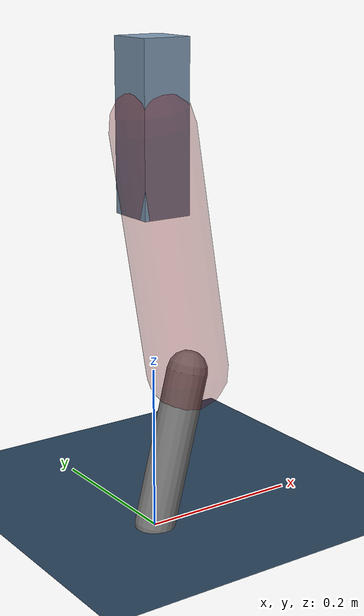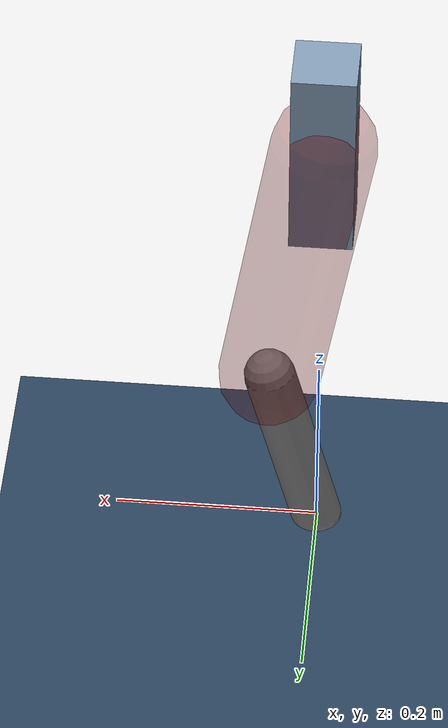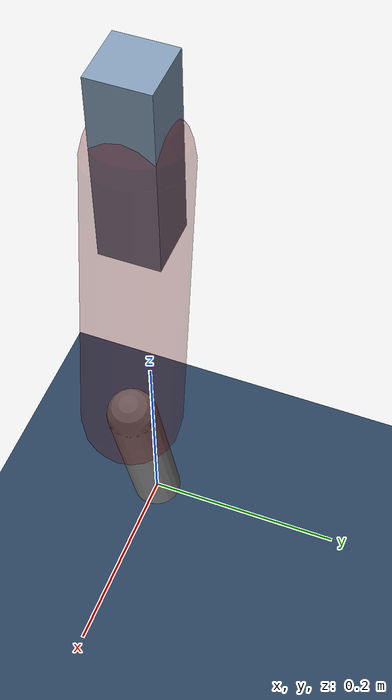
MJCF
<mujoco model="Hopper2D">
	<compiler inertiafromgeom="true" angle="radian" />
	<option timestep="0.001" integrator="implicit" cone="elliptic" solver="Newton" tolerance="1e-10" />

	<default>
		<geom contype="1" conaffinity="1" condim="3" friction="2 0.005 0.0001" solref="0.005 1" />
		<joint limited="true" damping="0.1" />
	</default>

	<asset>
		<texture name="skybox" type="skybox" builtin="gradient" rgb1=".4 .6 .8" rgb2="0 0 0" width="800" height="800" />
		<texture name="grid" type="2d" builtin="checker" rgb1=".1 .2 .3" rgb2=".2 .3 .4" width="300" height="300" mark="edge" markrgb=".2 .3 .4" />
		<material name="ground" texture="grid" texrepeat="1 1" texuniform="true" reflectance="0.1" />
		<material name="leg" rgba="0.5 0.6 0.7 1" />
	</asset>

	<worldbody>

		<geom name="floor" type="plane" size="5 5 0.25" material="ground" />

		<light directional="false" diffuse="0.8 0.8 0.8" specular="0.3 0.3 0.3" pos="0 0 2" dir="0 0 -1" />
		<light mode="targetbodycom" target="base" directional="false" diffuse="0.8 0.8 0.8" specular="0.3 0.3 0.3" pos="0 0 2" dir="0 0 -1" />

		<camera name="fixed" pos="0 -2 1" xyaxes="1 0 0 0 0 1" />
		<camera name="tracking" mode="trackcom" pos="0 -3 1" />

		<body name="root" pos="0 0 0.48910082793006915">
			<joint name="slide_x" type="slide" axis="1 0 0" range="-100 100" />
			<joint name="slide_z" type="slide" axis="0 0 1" range="0 10" />

			<body name="base" pos="0 0 0">
				<geom name="torso" type="box" size="0.03 0.03 0.1" mass="2.254" material="leg" />

				<body name="link1" pos="0 0 0" euler="0 1.409595100499762 0">
					<joint type="hinge" axis="0 -1 0" pos="0 0 0" name="hinge1" limited="true" range="-3.14 3.14" stiffness="0" damping="0.1" />
					<geom name="thigh" type="capsule" fromto="0 0 0 0.3023669809837106 0 0" size="0.05" rgba="0.5 0 0 0.3" mass="0.9951275467543897" />

					<body name="link2" pos="0.3023669809837106 0 0" euler="0 0.41045828990362615 0">
						<joint type="hinge" axis="0 -1 0" pos="0 0 0" name="hinge2" limited="true" range="-3.14 3.14" stiffness="0" damping="0.1" />
						<geom name="shank" type="capsule" fromto="0 0 0 0.1967338469463585 0 0" size="0.025" mass="0.39816046225172264" />

					</body>
				</body>
			</body>
		</body>
	</worldbody>

	<actuator>
		<motor name="torque1" joint="hinge1" ctrlrange="-47.832370374098396 47.832370374098396" ctrllimited="true" gear="1" />
		<motor name="torque2" joint="hinge2" ctrlrange="-126.76307386701885 126.76307386701885" ctrllimited="true" gear="1" />
	</actuator>
</mujoco>
